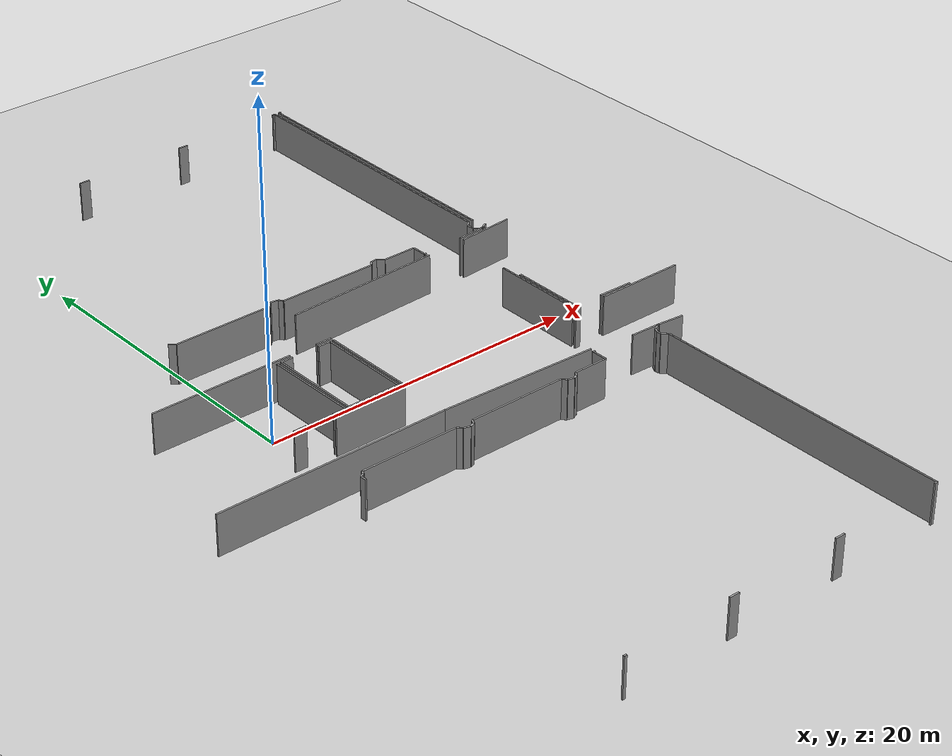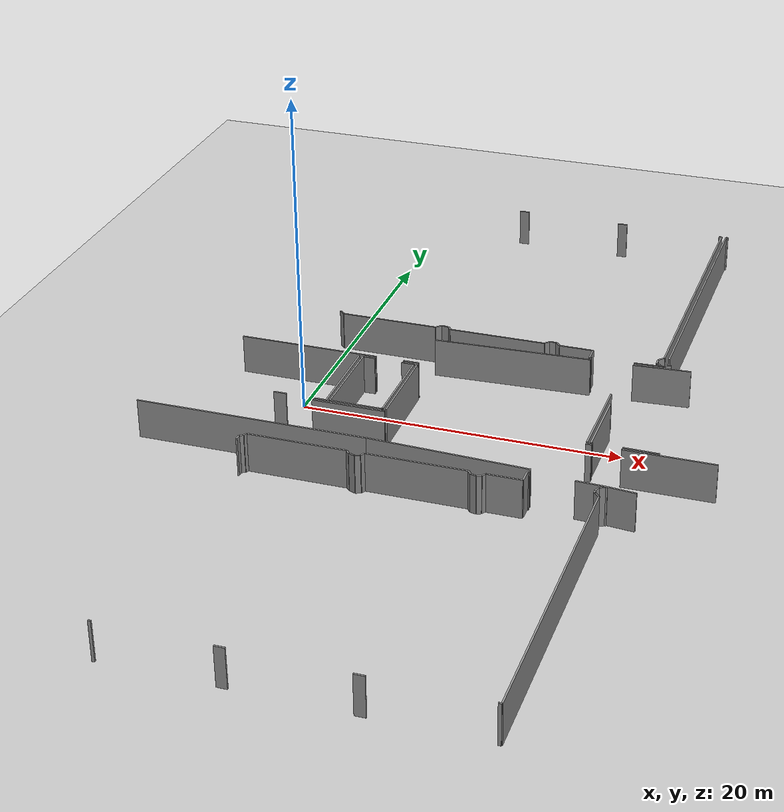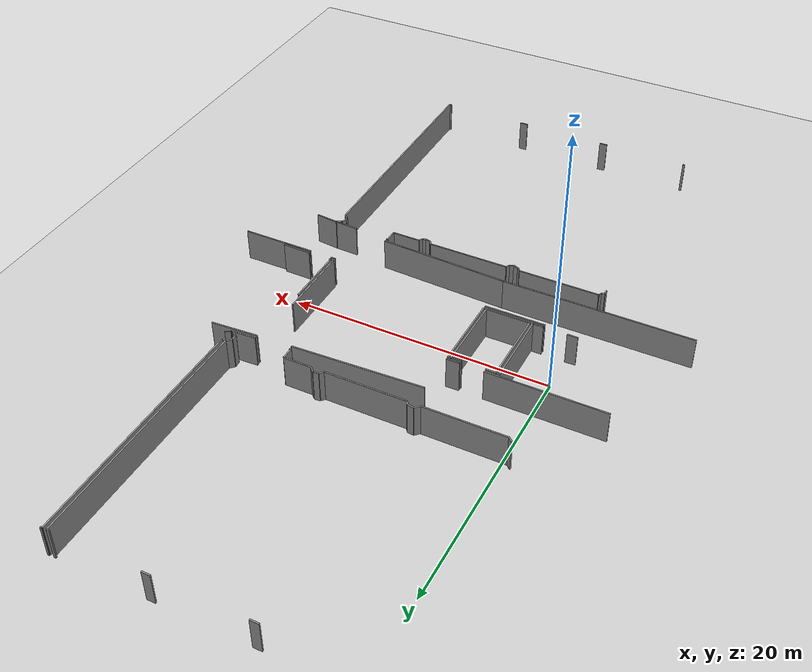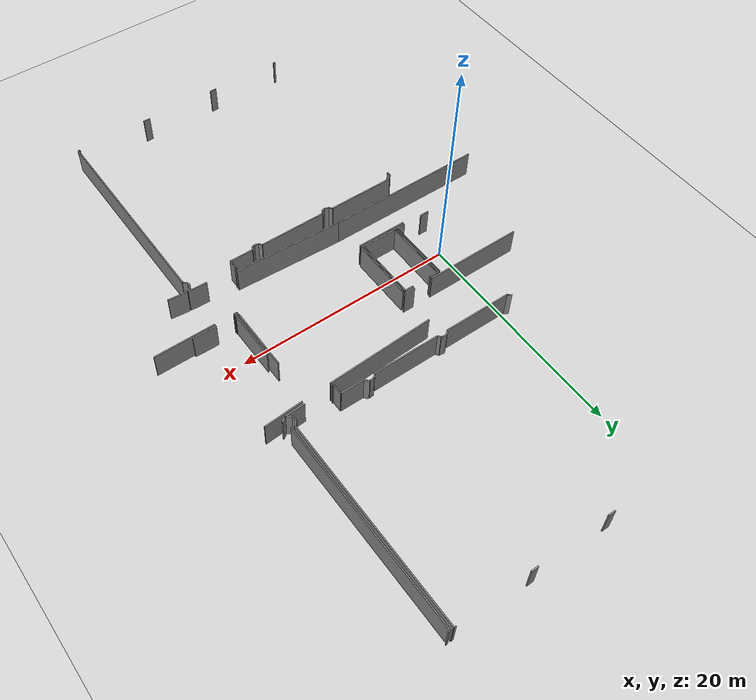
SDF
<sdf version="1.6">
 <world name="default">
  <model name="ground_plane">
   <static>1</static>
   <link name="link">
    <collision name="collision">
     <geometry><plane><normal>0 0 1</normal><size>100 100</size></plane></geometry>
     <surface><friction><ode><mu>100</mu><mu2>50</mu2></ode></friction></surface>
    </collision>
    <visual name="visual">
     <cast_shadows>0</cast_shadows>
     <geometry><plane><normal>0 0 1</normal><size>100 100</size></plane></geometry>
     <material>
      <script><uri>file://media/materials/scripts/gazebo.material</uri><name>Gazebo/Grey</name></script>
     </material>
    </visual>
   </link>
  </model>
  <model name="50041170">
   <static>1</static>
   <link name="Wall_81">
    <collision name="Wall_81_Collision">
     <geometry><box><size>9.92824075415 0.1 2.5</size></box></geometry>
     <pose>4.96412037707 0 1.25 0 0 0</pose>
    </collision>
    <visual name="Wall_81_Visual">
     <pose>4.96412037707 0 1.25 0 0 0</pose>
     <geometry><box><size>9.92824075415 0.1 2.5</size></box></geometry>
     <material>
      <script><uri>file://media/materials/scripts/gazebo.material</uri><name>Gazebo/Grey</name></script>
      <ambient>1 1 1 1</ambient>
     </material>
    </visual>
    <pose>72.8452921202 -20.6657992447 0 0 0 0.0432676211153</pose>
   </link>
   <link name="Wall_82">
    <collision name="Wall_82_Collision">
     <geometry><box><size>3.57288485013 0.1 2.5</size></box></geometry>
     <pose>1.78644242507 0 1.25 0 0 0</pose>
    </collision>
    <visual name="Wall_82_Visual">
     <pose>1.78644242507 0 1.25 0 0 0</pose>
     <geometry><box><size>3.57288485013 0.1 2.5</size></box></geometry>
     <material>
      <script><uri>file://media/materials/scripts/gazebo.material</uri><name>Gazebo/Grey</name></script>
      <ambient>1 1 1 1</ambient>
     </material>
    </visual>
    <pose>85.4134746596 -20.1150074577 0 0 0 0.064920921268</pose>
   </link>
   <link name="Wall_94">
    <collision name="Wall_94_Collision">
     <geometry><box><size>1.00168195233 0.1 2.5</size></box></geometry>
     <pose>0.500840976167 0 1.25 0 0 0</pose>
    </collision>
    <visual name="Wall_94_Visual">
     <pose>0.500840976167 0 1.25 0 0 0</pose>
     <geometry><box><size>1.00168195233 0.1 2.5</size></box></geometry>
     <material>
      <script><uri>file://media/materials/scripts/gazebo.material</uri><name>Gazebo/Grey</name></script>
      <ambient>1 1 1 1</ambient>
     </material>
    </visual>
    <pose>72.8352638761 -23.855542509 0 0 0 3.14159265359</pose>
   </link>
   <link name="Wall_95">
    <collision name="Wall_95_Collision">
     <geometry><box><size>8.88819777221 0.1 2.5</size></box></geometry>
     <pose>4.4440988861 0 1.25 0 0 0</pose>
    </collision>
    <visual name="Wall_95_Visual">
     <pose>4.4440988861 0 1.25 0 0 0</pose>
     <geometry><box><size>8.88819777221 0.1 2.5</size></box></geometry>
     <material>
      <script><uri>file://media/materials/scripts/gazebo.material</uri><name>Gazebo/Grey</name></script>
      <ambient>1 1 1 1</ambient>
     </material>
    </visual>
    <pose>70.0587096569 -23.855542509 0 0 0 3.14159265359</pose>
   </link>
   <link name="Wall_134">
    <collision name="Wall_134_Collision">
     <geometry><box><size>1.77138421845 0.1 2.5</size></box></geometry>
     <pose>0.885692109227 0 1.25 0 0 0</pose>
    </collision>
    <visual name="Wall_134_Visual">
     <pose>0.885692109227 0 1.25 0 0 0</pose>
     <geometry><box><size>1.77138421845 0.1 2.5</size></box></geometry>
     <material>
      <script><uri>file://media/materials/scripts/gazebo.material</uri><name>Gazebo/Grey</name></script>
      <ambient>1 1 1 1</ambient>
     </material>
    </visual>
    <pose>87.1745104884 -19.7574180445 0 0 0 -3.09442198889</pose>
   </link>
   <link name="Wall_135">
    <collision name="Wall_135_Collision">
     <geometry><box><size>0.125162641617 0.1 2.5</size></box></geometry>
     <pose>0.0625813208086 0 1.25 0 0 0</pose>
    </collision>
    <visual name="Wall_135_Visual">
     <pose>0.0625813208086 0 1.25 0 0 0</pose>
     <geometry><box><size>0.125162641617 0.1 2.5</size></box></geometry>
     <material>
      <script><uri>file://media/materials/scripts/gazebo.material</uri><name>Gazebo/Grey</name></script>
      <ambient>1 1 1 1</ambient>
     </material>
    </visual>
    <pose>82.7591634667 -19.9661070737 0 0 0 3.14159265359</pose>
   </link>
   <link name="Wall_136">
    <collision name="Wall_136_Collision">
     <geometry><box><size>0.94319991497 0.1 2.5</size></box></geometry>
     <pose>0.471599957485 0 1.25 0 0 0</pose>
    </collision>
    <visual name="Wall_136_Visual">
     <pose>0.471599957485 0 1.25 0 0 0</pose>
     <geometry><box><size>0.94319991497 0.1 2.5</size></box></geometry>
     <material>
      <script><uri>file://media/materials/scripts/gazebo.material</uri><name>Gazebo/Grey</name></script>
      <ambient>1 1 1 1</ambient>
     </material>
    </visual>
    <pose>82.6340008251 -19.9661070737 0 0 0 1.5796790003</pose>
   </link>
   <link name="Wall_137">
    <collision name="Wall_137_Collision">
     <geometry><box><size>2.13842785059 0.1 2.5</size></box></geometry>
     <pose>1.0692139253 0 1.25 0 0 0</pose>
    </collision>
    <visual name="Wall_137_Visual">
     <pose>1.0692139253 0 1.25 0 0 0</pose>
     <geometry><box><size>2.13842785059 0.1 2.5</size></box></geometry>
     <material>
      <script><uri>file://media/materials/scripts/gazebo.material</uri><name>Gazebo/Grey</name></script>
      <ambient>1 1 1 1</ambient>
     </material>
    </visual>
    <pose>82.6256227984 -19.0229443686 0 0 0 3.14159265359</pose>
   </link>
   <link name="Wall_138">
    <collision name="Wall_138_Collision">
     <geometry><box><size>0.473665938493 0.1 2.5</size></box></geometry>
     <pose>0.236832969247 0 1.25 0 0 0</pose>
    </collision>
    <visual name="Wall_138_Visual">
     <pose>0.236832969247 0 1.25 0 0 0</pose>
     <geometry><box><size>0.473665938493 0.1 2.5</size></box></geometry>
     <material>
      <script><uri>file://media/materials/scripts/gazebo.material</uri><name>Gazebo/Grey</name></script>
      <ambient>1 1 1 1</ambient>
     </material>
    </visual>
    <pose>80.4871949478 -19.0229443686 0 0 0 2.35297297395</pose>
   </link>
   <link name="Wall_139">
    <collision name="Wall_139_Collision">
     <geometry><box><size>0.423304508491 0.1 2.5</size></box></geometry>
     <pose>0.211652254246 0 1.25 0 0 0</pose>
    </collision>
    <visual name="Wall_139_Visual">
     <pose>0.211652254246 0 1.25 0 0 0</pose>
     <geometry><box><size>0.423304508491 0.1 2.5</size></box></geometry>
     <material>
      <script><uri>file://media/materials/scripts/gazebo.material</uri><name>Gazebo/Grey</name></script>
      <ambient>1 1 1 1</ambient>
     </material>
    </visual>
    <pose>80.153343277 -18.6869347212 0 0 0 -3.03855218802</pose>
   </link>
   <link name="Wall_140">
    <collision name="Wall_140_Collision">
     <geometry><box><size>0.381020437133 0.1 2.5</size></box></geometry>
     <pose>0.190510218566 0 1.25 0 0 0</pose>
    </collision>
    <visual name="Wall_140_Visual">
     <pose>0.190510218566 0 1.25 0 0 0</pose>
     <geometry><box><size>0.381020437133 0.1 2.5</size></box></geometry>
     <material>
      <script><uri>file://media/materials/scripts/gazebo.material</uri><name>Gazebo/Grey</name></script>
      <ambient>1 1 1 1</ambient>
     </material>
    </visual>
    <pose>79.7322839643 -18.7304750722 0 0 0 -2.27530308333</pose>
   </link>
   <link name="Wall_141">
    <collision name="Wall_141_Collision">
     <geometry><box><size>6.18285678017 0.1 2.5</size></box></geometry>
     <pose>3.09142839009 0 1.25 0 0 0</pose>
    </collision>
    <visual name="Wall_141_Visual">
     <pose>3.09142839009 0 1.25 0 0 0</pose>
     <geometry><box><size>6.18285678017 0.1 2.5</size></box></geometry>
     <material>
      <script><uri>file://media/materials/scripts/gazebo.material</uri><name>Gazebo/Grey</name></script>
      <ambient>1 1 1 1</ambient>
     </material>
    </visual>
    <pose>79.4855129955 -19.0207863921 0 0 0 3.14159265359</pose>
   </link>
   <link name="Wall_142">
    <collision name="Wall_142_Collision">
     <geometry><box><size>0.314224030328 0.1 2.5</size></box></geometry>
     <pose>0.157112015164 0 1.25 0 0 0</pose>
    </collision>
    <visual name="Wall_142_Visual">
     <pose>0.157112015164 0 1.25 0 0 0</pose>
     <geometry><box><size>0.314224030328 0.1 2.5</size></box></geometry>
     <material>
      <script><uri>file://media/materials/scripts/gazebo.material</uri><name>Gazebo/Grey</name></script>
      <ambient>1 1 1 1</ambient>
     </material>
    </visual>
    <pose>73.3026562153 -19.0207863921 0 0 0 2.16361682024</pose>
   </link>
   <link name="Wall_143">
    <collision name="Wall_143_Collision">
     <geometry><box><size>0.499048203514 0.1 2.5</size></box></geometry>
     <pose>0.249524101757 0 1.25 0 0 0</pose>
    </collision>
    <visual name="Wall_143_Visual">
     <pose>0.249524101757 0 1.25 0 0 0</pose>
     <geometry><box><size>0.499048203514 0.1 2.5</size></box></geometry>
     <material>
      <script><uri>file://media/materials/scripts/gazebo.material</uri><name>Gazebo/Grey</name></script>
      <ambient>1 1 1 1</ambient>
     </material>
    </visual>
    <pose>73.1270984735 -18.7601789851 0 0 0 2.99814878199</pose>
   </link>
   <link name="Wall_144">
    <collision name="Wall_144_Collision">
     <geometry><box><size>0.45402322018 0.1 2.5</size></box></geometry>
     <pose>0.22701161009 0 1.25 0 0 0</pose>
    </collision>
    <visual name="Wall_144_Visual">
     <pose>0.22701161009 0 1.25 0 0 0</pose>
     <geometry><box><size>0.45402322018 0.1 2.5</size></box></geometry>
     <material>
      <script><uri>file://media/materials/scripts/gazebo.material</uri><name>Gazebo/Grey</name></script>
      <ambient>1 1 1 1</ambient>
     </material>
    </visual>
    <pose>72.6331757164 -18.6888388182 0 0 0 -2.34749561906</pose>
   </link>
   <link name="Wall_145">
    <collision name="Wall_145_Collision">
     <geometry><box><size>6.21243375329 0.1 2.5</size></box></geometry>
     <pose>3.10621687665 0 1.25 0 0 0</pose>
    </collision>
    <visual name="Wall_145_Visual">
     <pose>3.10621687665 0 1.25 0 0 0</pose>
     <geometry><box><size>6.21243375329 0.1 2.5</size></box></geometry>
     <material>
      <script><uri>file://media/materials/scripts/gazebo.material</uri><name>Gazebo/Grey</name></script>
      <ambient>1 1 1 1</ambient>
     </material>
    </visual>
    <pose>72.3149376408 -19.0126622449 0 0 0 3.14159265359</pose>
   </link>
   <link name="Wall_146">
    <collision name="Wall_146_Collision">
     <geometry><box><size>0.431104638687 0.1 2.5</size></box></geometry>
     <pose>0.215552319343 0 1.25 0 0 0</pose>
    </collision>
    <visual name="Wall_146_Visual">
     <pose>0.215552319343 0 1.25 0 0 0</pose>
     <geometry><box><size>0.431104638687 0.1 2.5</size></box></geometry>
     <material>
      <script><uri>file://media/materials/scripts/gazebo.material</uri><name>Gazebo/Grey</name></script>
      <ambient>1 1 1 1</ambient>
     </material>
    </visual>
    <pose>66.1025038875 -19.0126622449 0 0 0 2.40118287194</pose>
   </link>
   <link name="Wall_150">
    <collision name="Wall_150_Collision">
     <geometry><box><size>0.658563676177 0.1 2.5</size></box></geometry>
     <pose>0.329281838088 0 1.25 0 0 0</pose>
    </collision>
    <visual name="Wall_150_Visual">
     <pose>0.329281838088 0 1.25 0 0 0</pose>
     <geometry><box><size>0.658563676177 0.1 2.5</size></box></geometry>
     <material>
      <script><uri>file://media/materials/scripts/gazebo.material</uri><name>Gazebo/Grey</name></script>
      <ambient>1 1 1 1</ambient>
     </material>
    </visual>
    <pose>72.4739932087 -0.0180254514297 0 0 0 0.0</pose>
   </link>
   <link name="Wall_151">
    <collision name="Wall_151_Collision">
     <geometry><box><size>0.637491669576 0.1 2.5</size></box></geometry>
     <pose>0.318745834788 0 1.25 0 0 0</pose>
    </collision>
    <visual name="Wall_151_Visual">
     <pose>0.318745834788 0 1.25 0 0 0</pose>
     <geometry><box><size>0.637491669576 0.1 2.5</size></box></geometry>
     <material>
      <script><uri>file://media/materials/scripts/gazebo.material</uri><name>Gazebo/Grey</name></script>
      <ambient>1 1 1 1</ambient>
     </material>
    </visual>
    <pose>79.6802386468 -0.0180254514297 0 0 0 0.0</pose>
   </link>
   <link name="Wall_152">
    <collision name="Wall_152_Collision">
     <geometry><box><size>0.182920250071 0.1 2.5</size></box></geometry>
     <pose>0.0914601250357 0 1.25 0 0 0</pose>
    </collision>
    <visual name="Wall_152_Visual">
     <pose>0.0914601250357 0 1.25 0 0 0</pose>
     <geometry><box><size>0.182920250071 0.1 2.5</size></box></geometry>
     <material>
      <script><uri>file://media/materials/scripts/gazebo.material</uri><name>Gazebo/Grey</name></script>
      <ambient>1 1 1 1</ambient>
     </material>
    </visual>
    <pose>86.8687125131 -0.0180254514297 0 0 0 0.0</pose>
   </link>
   <link name="Wall_153">
    <collision name="Wall_153_Collision">
     <geometry><box><size>18.6677668116 0.1 2.5</size></box></geometry>
     <pose>9.33388340579 0 1.25 0 0 0</pose>
    </collision>
    <visual name="Wall_153_Visual">
     <pose>9.33388340579 0 1.25 0 0 0</pose>
     <geometry><box><size>18.6677668116 0.1 2.5</size></box></geometry>
     <material>
      <script><uri>file://media/materials/scripts/gazebo.material</uri><name>Gazebo/Grey</name></script>
      <ambient>1 1 1 1</ambient>
     </material>
    </visual>
    <pose>87.0516327632 -0.0180254514297 0 0 0 -1.57079632679</pose>
   </link>
   <link name="Wall_154">
    <collision name="Wall_154_Collision">
     <geometry><box><size>0.447329979428 0.1 2.5</size></box></geometry>
     <pose>0.223664989714 0 1.25 0 0 0</pose>
    </collision>
    <visual name="Wall_154_Visual">
     <pose>0.223664989714 0 1.25 0 0 0</pose>
     <geometry><box><size>0.447329979428 0.1 2.5</size></box></geometry>
     <material>
      <script><uri>file://media/materials/scripts/gazebo.material</uri><name>Gazebo/Grey</name></script>
      <ambient>1 1 1 1</ambient>
     </material>
    </visual>
    <pose>87.0516327632 -18.685792263 0 0 0 -2.39432860486</pose>
   </link>
   <link name="Wall_155">
    <collision name="Wall_155_Collision">
     <geometry><box><size>0.474867603504 0.1 2.5</size></box></geometry>
     <pose>0.237433801752 0 1.25 0 0 0</pose>
    </collision>
    <visual name="Wall_155_Visual">
     <pose>0.237433801752 0 1.25 0 0 0</pose>
     <geometry><box><size>0.474867603504 0.1 2.5</size></box></geometry>
     <material>
      <script><uri>file://media/materials/scripts/gazebo.material</uri><name>Gazebo/Grey</name></script>
      <ambient>1 1 1 1</ambient>
     </material>
    </visual>
    <pose>86.7234933833 -18.9898130811 0 0 0 -1.49105160984</pose>
   </link>
   <link name="Wall_156">
    <collision name="Wall_156_Collision">
     <geometry><box><size>0.507253548489 0.1 2.5</size></box></geometry>
     <pose>0.253626774244 0 1.25 0 0 0</pose>
    </collision>
    <visual name="Wall_156_Visual">
     <pose>0.253626774244 0 1.25 0 0 0</pose>
     <geometry><box><size>0.507253548489 0.1 2.5</size></box></geometry>
     <material>
      <script><uri>file://media/materials/scripts/gazebo.material</uri><name>Gazebo/Grey</name></script>
      <ambient>1 1 1 1</ambient>
     </material>
    </visual>
    <pose>86.7613214433 -19.4631715909 0 0 0 -0.618824032403</pose>
   </link>
   <link name="Wall_165">
    <collision name="Wall_165_Collision">
     <geometry><box><size>0.0771793976707 0.1 2.5</size></box></geometry>
     <pose>0.0385896988353 0 1.25 0 0 0</pose>
    </collision>
    <visual name="Wall_165_Visual">
     <pose>0.0385896988353 0 1.25 0 0 0</pose>
     <geometry><box><size>0.0771793976707 0.1 2.5</size></box></geometry>
     <material>
      <script><uri>file://media/materials/scripts/gazebo.material</uri><name>Gazebo/Grey</name></script>
      <ambient>1 1 1 1</ambient>
     </material>
    </visual>
    <pose>87.2898987655 -19.7506902352 0 0 0 1.57079632679</pose>
   </link>
   <link name="Wall_166">
    <collision name="Wall_166_Collision">
     <geometry><box><size>0.4204239429 0.1 2.5</size></box></geometry>
     <pose>0.21021197145 0 1.25 0 0 0</pose>
    </collision>
    <visual name="Wall_166_Visual">
     <pose>0.21021197145 0 1.25 0 0 0</pose>
     <geometry><box><size>0.4204239429 0.1 2.5</size></box></geometry>
     <material>
      <script><uri>file://media/materials/scripts/gazebo.material</uri><name>Gazebo/Grey</name></script>
      <ambient>1 1 1 1</ambient>
     </material>
    </visual>
    <pose>87.2898987655 -19.6735108375 0 0 0 0.522554085473</pose>
   </link>
   <link name="Wall_169">
    <collision name="Wall_169_Collision">
     <geometry><box><size>18.7020405573 0.1 2.5</size></box></geometry>
     <pose>9.35102027863 0 1.25 0 0 0</pose>
    </collision>
    <visual name="Wall_169_Visual">
     <pose>9.35102027863 0 1.25 0 0 0</pose>
     <geometry><box><size>18.7020405573 0.1 2.5</size></box></geometry>
     <material>
      <script><uri>file://media/materials/scripts/gazebo.material</uri><name>Gazebo/Grey</name></script>
      <ambient>1 1 1 1</ambient>
     </material>
    </visual>
    <pose>87.367205103 -18.7020405573 0 0 0 1.57079632679</pose>
   </link>
   <link name="Wall_170">
    <collision name="Wall_170_Collision">
     <geometry><box><size>0.149535082987 0.1 2.5</size></box></geometry>
     <pose>0.0747675414935 0 1.25 0 0 0</pose>
    </collision>
    <visual name="Wall_170_Visual">
     <pose>0.0747675414935 0 1.25 0 0 0</pose>
     <geometry><box><size>0.149535082987 0.1 2.5</size></box></geometry>
     <material>
      <script><uri>file://media/materials/scripts/gazebo.material</uri><name>Gazebo/Grey</name></script>
      <ambient>1 1 1 1</ambient>
     </material>
    </visual>
    <pose>87.367205103 -0.0 0 0 0 0.0</pose>
   </link>
   <link name="Wall_263">
    <collision name="Wall_263_Collision">
     <geometry><box><size>4.56894417822 0.1 2.5</size></box></geometry>
     <pose>2.28447208911 0 1.25 0 0 0</pose>
    </collision>
    <visual name="Wall_263_Visual">
     <pose>2.28447208911 0 1.25 0 0 0</pose>
     <geometry><box><size>4.56894417822 0.1 2.5</size></box></geometry>
     <material>
      <script><uri>file://media/materials/scripts/gazebo.material</uri><name>Gazebo/Grey</name></script>
      <ambient>1 1 1 1</ambient>
     </material>
    </visual>
    <pose>68.2446129923 -30.0785122656 0 0 0 0.0</pose>
   </link>
   <link name="Wall_264">
    <collision name="Wall_264_Collision">
     <geometry><box><size>0.350480784488 0.1 2.5</size></box></geometry>
     <pose>0.175240392244 0 1.25 0 0 0</pose>
    </collision>
    <visual name="Wall_264_Visual">
     <pose>0.175240392244 0 1.25 0 0 0</pose>
     <geometry><box><size>0.350480784488 0.1 2.5</size></box></geometry>
     <material>
      <script><uri>file://media/materials/scripts/gazebo.material</uri><name>Gazebo/Grey</name></script>
      <ambient>1 1 1 1</ambient>
     </material>
    </visual>
    <pose>84.9710894608 -30.0785122656 0 0 0 0.0</pose>
   </link>
   <link name="Wall_265">
    <collision name="Wall_265_Collision">
     <geometry><box><size>5.55374313732 0.1 2.5</size></box></geometry>
     <pose>2.77687156866 0 1.25 0 0 0</pose>
    </collision>
    <visual name="Wall_265_Visual">
     <pose>2.77687156866 0 1.25 0 0 0</pose>
     <geometry><box><size>5.55374313732 0.1 2.5</size></box></geometry>
     <material>
      <script><uri>file://media/materials/scripts/gazebo.material</uri><name>Gazebo/Grey</name></script>
      <ambient>1 1 1 1</ambient>
     </material>
    </visual>
    <pose>87.064326743 -30.0785122656 0 0 0 0.0</pose>
   </link>
   <link name="Wall_276">
    <collision name="Wall_276_Collision">
     <geometry><box><size>9.93431141562 0.1 2.5</size></box></geometry>
     <pose>4.96715570781 0 1.25 0 0 0</pose>
    </collision>
    <visual name="Wall_276_Visual">
     <pose>4.96715570781 0 1.25 0 0 0</pose>
     <geometry><box><size>9.93431141562 0.1 2.5</size></box></geometry>
     <material>
      <script><uri>file://media/materials/scripts/gazebo.material</uri><name>Gazebo/Grey</name></script>
      <ambient>1 1 1 1</ambient>
     </material>
    </visual>
    <pose>82.7479927644 -33.697819809 0 0 0 3.09809569011</pose>
   </link>
   <link name="Wall_277">
    <collision name="Wall_277_Collision">
     <geometry><box><size>14.4254394199 0.1 2.5</size></box></geometry>
     <pose>7.21271970993 0 1.25 0 0 0</pose>
    </collision>
    <visual name="Wall_277_Visual">
     <pose>7.21271970993 0 1.25 0 0 0</pose>
     <geometry><box><size>14.4254394199 0.1 2.5</size></box></geometry>
     <material>
      <script><uri>file://media/materials/scripts/gazebo.material</uri><name>Gazebo/Grey</name></script>
      <ambient>1 1 1 1</ambient>
     </material>
    </visual>
    <pose>72.8230776554 -33.2658436736 0 0 0 3.14128466346</pose>
   </link>
   <link name="Wall_293">
    <collision name="Wall_293_Collision">
     <geometry><box><size>0.109154425083 0.1 2.5</size></box></geometry>
     <pose>0.0545772125414 0 1.25 0 0 0</pose>
    </collision>
    <visual name="Wall_293_Visual">
     <pose>0.0545772125414 0 1.25 0 0 0</pose>
     <geometry><box><size>0.109154425083 0.1 2.5</size></box></geometry>
     <material>
      <script><uri>file://media/materials/scripts/gazebo.material</uri><name>Gazebo/Grey</name></script>
      <ambient>1 1 1 1</ambient>
     </material>
    </visual>
    <pose>87.2223667925 -34.2840277998 0 0 0 1.63713241817</pose>
   </link>
   <link name="Wall_294">
    <collision name="Wall_294_Collision">
     <geometry><box><size>1.73193680549 0.1 2.5</size></box></geometry>
     <pose>0.865968402747 0 1.25 0 0 0</pose>
    </collision>
    <visual name="Wall_294_Visual">
     <pose>0.865968402747 0 1.25 0 0 0</pose>
     <geometry><box><size>1.73193680549 0.1 2.5</size></box></geometry>
     <material>
      <script><uri>file://media/materials/scripts/gazebo.material</uri><name>Gazebo/Grey</name></script>
      <ambient>1 1 1 1</ambient>
     </material>
    </visual>
    <pose>87.215131224 -34.1751134524 0 0 0 -0.0982246417677</pose>
   </link>
   <link name="Wall_304">
    <collision name="Wall_304_Collision">
     <geometry><box><size>0.183681888864 0.1 2.5</size></box></geometry>
     <pose>0.0918409444321 0 1.25 0 0 0</pose>
    </collision>
    <visual name="Wall_304_Visual">
     <pose>0.0918409444321 0 1.25 0 0 0</pose>
     <geometry><box><size>0.183681888864 0.1 2.5</size></box></geometry>
     <material>
      <script><uri>file://media/materials/scripts/gazebo.material</uri><name>Gazebo/Grey</name></script>
      <ambient>1 1 1 1</ambient>
     </material>
    </visual>
    <pose>87.0743549871 -53.9197105773 0 0 0 3.14159265359</pose>
   </link>
   <link name="Wall_305">
    <collision name="Wall_305_Collision">
     <geometry><box><size>0.634318174606 0.1 2.5</size></box></geometry>
     <pose>0.317159087303 0 1.25 0 0 0</pose>
    </collision>
    <visual name="Wall_305_Visual">
     <pose>0.317159087303 0 1.25 0 0 0</pose>
     <geometry><box><size>0.634318174606 0.1 2.5</size></box></geometry>
     <material>
      <script><uri>file://media/materials/scripts/gazebo.material</uri><name>Gazebo/Grey</name></script>
      <ambient>1 1 1 1</ambient>
     </material>
    </visual>
    <pose>80.3386753832 -53.9197105773 0 0 0 3.14159265359</pose>
   </link>
   <link name="Wall_306">
    <collision name="Wall_306_Collision">
     <geometry><box><size>0.618450699756 0.1 2.5</size></box></geometry>
     <pose>0.309225349878 0 1.25 0 0 0</pose>
    </collision>
    <visual name="Wall_306_Visual">
     <pose>0.309225349878 0 1.25 0 0 0</pose>
     <geometry><box><size>0.618450699756 0.1 2.5</size></box></geometry>
     <material>
      <script><uri>file://media/materials/scripts/gazebo.material</uri><name>Gazebo/Grey</name></script>
      <ambient>1 1 1 1</ambient>
     </material>
    </visual>
    <pose>73.1356034401 -53.9197105773 0 0 0 3.14159265359</pose>
   </link>
   <link name="Wall_307">
    <collision name="Wall_307_Collision">
     <geometry><box><size>0.175557741741 0.1 2.5</size></box></geometry>
     <pose>0.0877788708705 0 1.25 0 0 0</pose>
    </collision>
    <visual name="Wall_307_Visual">
     <pose>0.0877788708705 0 1.25 0 0 0</pose>
     <geometry><box><size>0.175557741741 0.1 2.5</size></box></geometry>
     <material>
      <script><uri>file://media/materials/scripts/gazebo.material</uri><name>Gazebo/Grey</name></script>
      <ambient>1 1 1 1</ambient>
     </material>
    </visual>
    <pose>65.9598235537 -53.9197105773 0 0 0 3.14159265359</pose>
   </link>
   <link name="Wall_309">
    <collision name="Wall_309_Collision">
     <geometry><box><size>0.36723683793 0.1 2.5</size></box></geometry>
     <pose>0.183618418965 0 1.25 0 0 0</pose>
    </collision>
    <visual name="Wall_309_Visual">
     <pose>0.183618418965 0 1.25 0 0 0</pose>
     <geometry><box><size>0.36723683793 0.1 2.5</size></box></geometry>
     <material>
      <script><uri>file://media/materials/scripts/gazebo.material</uri><name>Gazebo/Grey</name></script>
      <ambient>1 1 1 1</ambient>
     </material>
    </visual>
    <pose>65.7842658119 -35.5991241154 0 0 0 1.57079632679</pose>
   </link>
   <link name="Wall_310">
    <collision name="Wall_310_Collision">
     <geometry><box><size>0.252267484832 0.1 2.5</size></box></geometry>
     <pose>0.126133742416 0 1.25 0 0 0</pose>
    </collision>
    <visual name="Wall_310_Visual">
     <pose>0.126133742416 0 1.25 0 0 0</pose>
     <geometry><box><size>0.252267484832 0.1 2.5</size></box></geometry>
     <material>
      <script><uri>file://media/materials/scripts/gazebo.material</uri><name>Gazebo/Grey</name></script>
      <ambient>1 1 1 1</ambient>
     </material>
    </visual>
    <pose>65.7842658119 -35.2318872775 0 0 0 0.48187651467</pose>
   </link>
   <link name="Wall_311">
    <collision name="Wall_311_Collision">
     <geometry><box><size>0.235112041039 0.1 2.5</size></box></geometry>
     <pose>0.11755602052 0 1.25 0 0 0</pose>
    </collision>
    <visual name="Wall_311_Visual">
     <pose>0.11755602052 0 1.25 0 0 0</pose>
     <geometry><box><size>0.235112041039 0.1 2.5</size></box></geometry>
     <material>
      <script><uri>file://media/materials/scripts/gazebo.material</uri><name>Gazebo/Grey</name></script>
      <ambient>1 1 1 1</ambient>
     </material>
    </visual>
    <pose>66.0078067976 -35.1149757228 0 0 0 1.09097046267</pose>
   </link>
   <link name="Wall_312">
    <collision name="Wall_312_Collision">
     <geometry><box><size>6.12586081051 0.1 2.5</size></box></geometry>
     <pose>3.06293040526 0 1.25 0 0 0</pose>
    </collision>
    <visual name="Wall_312_Visual">
     <pose>3.06293040526 0 1.25 0 0 0</pose>
     <geometry><box><size>6.12586081051 0.1 2.5</size></box></geometry>
     <material>
      <script><uri>file://media/materials/scripts/gazebo.material</uri><name>Gazebo/Grey</name></script>
      <ambient>1 1 1 1</ambient>
     </material>
    </visual>
    <pose>66.1163403256 -34.9064136333 0 0 0 0.0</pose>
   </link>
   <link name="Wall_313">
    <collision name="Wall_313_Collision">
     <geometry><box><size>0.345186006347 0.1 2.5</size></box></geometry>
     <pose>0.172593003174 0 1.25 0 0 0</pose>
    </collision>
    <visual name="Wall_313_Visual">
     <pose>0.172593003174 0 1.25 0 0 0</pose>
     <geometry><box><size>0.345186006347 0.1 2.5</size></box></geometry>
     <material>
      <script><uri>file://media/materials/scripts/gazebo.material</uri><name>Gazebo/Grey</name></script>
      <ambient>1 1 1 1</ambient>
     </material>
    </visual>
    <pose>72.2422011361 -34.9064136333 0 0 0 -0.803861604719</pose>
   </link>
   <link name="Wall_314">
    <collision name="Wall_314_Collision">
     <geometry><box><size>0.408705880276 0.1 2.5</size></box></geometry>
     <pose>0.204352940138 0 1.25 0 0 0</pose>
    </collision>
    <visual name="Wall_314_Visual">
     <pose>0.204352940138 0 1.25 0 0 0</pose>
     <geometry><box><size>0.408705880276 0.1 2.5</size></box></geometry>
     <material>
      <script><uri>file://media/materials/scripts/gazebo.material</uri><name>Gazebo/Grey</name></script>
      <ambient>1 1 1 1</ambient>
     </material>
    </visual>
    <pose>72.4817365364 -35.1549617594 0 0 0 -0.344047673976</pose>
   </link>
   <link name="Wall_315">
    <collision name="Wall_315_Collision">
     <geometry><box><size>0.326164297571 0.1 2.5</size></box></geometry>
     <pose>0.163082148786 0 1.25 0 0 0</pose>
    </collision>
    <visual name="Wall_315_Visual">
     <pose>0.163082148786 0 1.25 0 0 0</pose>
     <geometry><box><size>0.326164297571 0.1 2.5</size></box></geometry>
     <material>
      <script><uri>file://media/materials/scripts/gazebo.material</uri><name>Gazebo/Grey</name></script>
      <ambient>1 1 1 1</ambient>
     </material>
    </visual>
    <pose>72.8664910666 -35.2928183809 0 0 0 0.364100187523</pose>
   </link>
   <link name="Wall_316">
    <collision name="Wall_316_Collision">
     <geometry><box><size>0.311559843321 0.1 2.5</size></box></geometry>
     <pose>0.15577992166 0 1.25 0 0 0</pose>
    </collision>
    <visual name="Wall_316_Visual">
     <pose>0.15577992166 0 1.25 0 0 0</pose>
     <geometry><box><size>0.311559843321 0.1 2.5</size></box></geometry>
     <material>
      <script><uri>file://media/materials/scripts/gazebo.material</uri><name>Gazebo/Grey</name></script>
      <ambient>1 1 1 1</ambient>
     </material>
    </visual>
    <pose>73.1712735235 -35.176668465 0 0 0 1.08637532591</pose>
   </link>
   <link name="Wall_317">
    <collision name="Wall_317_Collision">
     <geometry><box><size>6.16610072673 0.1 2.5</size></box></geometry>
     <pose>3.08305036337 0 1.25 0 0 0</pose>
    </collision>
    <visual name="Wall_317_Visual">
     <pose>3.08305036337 0 1.25 0 0 0</pose>
     <geometry><box><size>6.16610072673 0.1 2.5</size></box></geometry>
     <material>
      <script><uri>file://media/materials/scripts/gazebo.material</uri><name>Gazebo/Grey</name></script>
      <ambient>1 1 1 1</ambient>
     </material>
    </visual>
    <pose>73.3163657136 -34.900955222 0 0 0 0.0</pose>
   </link>
   <link name="Wall_318">
    <collision name="Wall_318_Collision">
     <geometry><box><size>0.342493951441 0.1 2.5</size></box></geometry>
     <pose>0.171246975721 0 1.25 0 0 0</pose>
    </collision>
    <visual name="Wall_318_Visual">
     <pose>0.171246975721 0 1.25 0 0 0</pose>
     <geometry><box><size>0.342493951441 0.1 2.5</size></box></geometry>
     <material>
      <script><uri>file://media/materials/scripts/gazebo.material</uri><name>Gazebo/Grey</name></script>
      <ambient>1 1 1 1</ambient>
     </material>
    </visual>
    <pose>79.4824664403 -34.900955222 0 0 0 -0.935078604188</pose>
   </link>
   <link name="Wall_319">
    <collision name="Wall_319_Collision">
     <geometry><box><size>0.382476712743 0.1 2.5</size></box></geometry>
     <pose>0.191238356371 0 1.25 0 0 0</pose>
    </collision>
    <visual name="Wall_319_Visual">
     <pose>0.191238356371 0 1.25 0 0 0</pose>
     <geometry><box><size>0.382476712743 0.1 2.5</size></box></geometry>
     <material>
      <script><uri>file://media/materials/scripts/gazebo.material</uri><name>Gazebo/Grey</name></script>
      <ambient>1 1 1 1</ambient>
     </material>
    </visual>
    <pose>79.685823998 -35.1765415252 0 0 0 -0.263574055902</pose>
   </link>
   <link name="Wall_320">
    <collision name="Wall_320_Collision">
     <geometry><box><size>0.290526488278 0.1 2.5</size></box></geometry>
     <pose>0.145263244139 0 1.25 0 0 0</pose>
    </collision>
    <visual name="Wall_320_Visual">
     <pose>0.145263244139 0 1.25 0 0 0</pose>
     <geometry><box><size>0.290526488278 0.1 2.5</size></box></geometry>
     <material>
      <script><uri>file://media/materials/scripts/gazebo.material</uri><name>Gazebo/Grey</name></script>
      <ambient>1 1 1 1</ambient>
     </material>
    </visual>
    <pose>80.0550918727 -35.2761892672 0 0 0 0.380506377112</pose>
   </link>
   <link name="Wall_321">
    <collision name="Wall_321_Collision">
     <geometry><box><size>0.3004389372 0.1 2.5</size></box></geometry>
     <pose>0.1502194686 0 1.25 0 0 0</pose>
    </collision>
    <visual name="Wall_321_Visual">
     <pose>0.1502194686 0 1.25 0 0 0</pose>
     <geometry><box><size>0.3004389372 0.1 2.5</size></box></geometry>
     <material>
      <script><uri>file://media/materials/scripts/gazebo.material</uri><name>Gazebo/Grey</name></script>
      <ambient>1 1 1 1</ambient>
     </material>
    </visual>
    <pose>80.3248389451 -35.1682904383 0 0 0 1.00189594706</pose>
   </link>
   <link name="Wall_322">
    <collision name="Wall_322_Collision">
     <geometry><box><size>2.15061407128 0.1 2.5</size></box></geometry>
     <pose>1.07530703564 0 1.25 0 0 0</pose>
    </collision>
    <visual name="Wall_322_Visual">
     <pose>1.07530703564 0 1.25 0 0 0</pose>
     <geometry><box><size>2.15061407128 0.1 2.5</size></box></geometry>
     <material>
      <script><uri>file://media/materials/scripts/gazebo.material</uri><name>Gazebo/Grey</name></script>
      <ambient>1 1 1 1</ambient>
     </material>
    </visual>
    <pose>80.4866871886 -34.9151724795 0 0 0 0.0</pose>
   </link>
   <link name="Wall_323">
    <collision name="Wall_323_Collision">
     <geometry><box><size>0.9524293104 0.1 2.5</size></box></geometry>
     <pose>0.4762146552 0 1.25 0 0 0</pose>
    </collision>
    <visual name="Wall_323_Visual">
     <pose>0.4762146552 0 1.25 0 0 0</pose>
     <geometry><box><size>0.9524293104 0.1 2.5</size></box></geometry>
     <material>
      <script><uri>file://media/materials/scripts/gazebo.material</uri><name>Gazebo/Grey</name></script>
      <ambient>1 1 1 1</ambient>
     </material>
    </visual>
    <pose>82.6373012599 -34.9151724795 0 0 0 1.57079632679</pose>
   </link>
   <link name="Wall_324">
    <collision name="Wall_324_Collision">
     <geometry><box><size>0.12005646468 0.1 2.5</size></box></geometry>
     <pose>0.0600282323402 0 1.25 0 0 0</pose>
    </collision>
    <visual name="Wall_324_Visual">
     <pose>0.0600282323402 0 1.25 0 0 0</pose>
     <geometry><box><size>0.12005646468 0.1 2.5</size></box></geometry>
     <material>
      <script><uri>file://media/materials/scripts/gazebo.material</uri><name>Gazebo/Grey</name></script>
      <ambient>1 1 1 1</ambient>
     </material>
    </visual>
    <pose>82.6373012599 -33.9627431691 0 0 0 -0.11976486285</pose>
   </link>
   <link name="Wall_325">
    <collision name="Wall_325_Collision">
     <geometry><box><size>1.75802720205 0.1 2.5</size></box></geometry>
     <pose>0.879013601023 0 1.25 0 0 0</pose>
    </collision>
    <visual name="Wall_325_Visual">
     <pose>0.879013601023 0 1.25 0 0 0</pose>
     <geometry><box><size>1.75802720205 0.1 2.5</size></box></geometry>
     <material>
      <script><uri>file://media/materials/scripts/gazebo.material</uri><name>Gazebo/Grey</name></script>
      <ambient>1 1 1 1</ambient>
     </material>
    </visual>
    <pose>85.4044619339 -34.1050426835 0 0 0 -0.0385674693039</pose>
   </link>
   <link name="Wall_326">
    <collision name="Wall_326_Collision">
     <geometry><box><size>0.0906350163435 0.1 2.5</size></box></geometry>
     <pose>0.0453175081717 0 1.25 0 0 0</pose>
    </collision>
    <visual name="Wall_326_Visual">
     <pose>0.0453175081717 0 1.25 0 0 0</pose>
     <geometry><box><size>0.0906350163435 0.1 2.5</size></box></geometry>
     <material>
      <script><uri>file://media/materials/scripts/gazebo.material</uri><name>Gazebo/Grey</name></script>
      <ambient>1 1 1 1</ambient>
     </material>
    </visual>
    <pose>87.1611818095 -34.1728285361 0 0 0 -1.57079632679</pose>
   </link>
   <link name="Wall_327">
    <collision name="Wall_327_Collision">
     <geometry><box><size>0.348297085921 0.1 2.5</size></box></geometry>
     <pose>0.17414854296 0 1.25 0 0 0</pose>
    </collision>
    <visual name="Wall_327_Visual">
     <pose>0.17414854296 0 1.25 0 0 0</pose>
     <geometry><box><size>0.348297085921 0.1 2.5</size></box></geometry>
     <material>
      <script><uri>file://media/materials/scripts/gazebo.material</uri><name>Gazebo/Grey</name></script>
      <ambient>1 1 1 1</ambient>
     </material>
    </visual>
    <pose>87.1611818095 -34.2634635524 0 0 0 -2.73306382362</pose>
   </link>
   <link name="Wall_328">
    <collision name="Wall_328_Collision">
     <geometry><box><size>0.347945137679 0.1 2.5</size></box></geometry>
     <pose>0.17397256884 0 1.25 0 0 0</pose>
    </collision>
    <visual name="Wall_328_Visual">
     <pose>0.17397256884 0 1.25 0 0 0</pose>
     <geometry><box><size>0.347945137679 0.1 2.5</size></box></geometry>
     <material>
      <script><uri>file://media/materials/scripts/gazebo.material</uri><name>Gazebo/Grey</name></script>
      <ambient>1 1 1 1</ambient>
     </material>
    </visual>
    <pose>86.8415473961 -34.4018279331 0 0 0 -2.04064388899</pose>
   </link>
   <link name="Wall_329">
    <collision name="Wall_329_Collision">
     <geometry><box><size>0.254486279661 0.1 2.5</size></box></geometry>
     <pose>0.12724313983 0 1.25 0 0 0</pose>
    </collision>
    <visual name="Wall_329_Visual">
     <pose>0.12724313983 0 1.25 0 0 0</pose>
     <geometry><box><size>0.254486279661 0.1 2.5</size></box></geometry>
     <material>
      <script><uri>file://media/materials/scripts/gazebo.material</uri><name>Gazebo/Grey</name></script>
      <ambient>1 1 1 1</ambient>
     </material>
    </visual>
    <pose>86.6840151058 -34.7120688014 0 0 0 -1.45782557003</pose>
   </link>
   <link name="Wall_330">
    <collision name="Wall_330_Collision">
     <geometry><box><size>0.429159035997 0.1 2.5</size></box></geometry>
     <pose>0.214579517999 0 1.25 0 0 0</pose>
    </collision>
    <visual name="Wall_330_Visual">
     <pose>0.214579517999 0 1.25 0 0 0</pose>
     <geometry><box><size>0.429159035997 0.1 2.5</size></box></geometry>
     <material>
      <script><uri>file://media/materials/scripts/gazebo.material</uri><name>Gazebo/Grey</name></script>
      <ambient>1 1 1 1</ambient>
     </material>
    </visual>
    <pose>86.7127035004 -34.9649328806 0 0 0 -0.730572558716</pose>
   </link>
   <link name="Wall_331">
    <collision name="Wall_331_Collision">
     <geometry><box><size>18.6684487946 0.1 2.5</size></box></geometry>
     <pose>9.33422439728 0 1.25 0 0 0</pose>
    </collision>
    <visual name="Wall_331_Visual">
     <pose>9.33422439728 0 1.25 0 0 0</pose>
     <geometry><box><size>18.6684487946 0.1 2.5</size></box></geometry>
     <material>
      <script><uri>file://media/materials/scripts/gazebo.material</uri><name>Gazebo/Grey</name></script>
      <ambient>1 1 1 1</ambient>
     </material>
    </visual>
    <pose>87.0323379137 -35.2513090667 0 0 0 -1.56854562512</pose>
   </link>
   <link name="Wall_413">
    <collision name="Wall_413_Collision">
     <geometry><box><size>0.797816635461 0.1 2.5</size></box></geometry>
     <pose>0.39890831773 0 1.25 0 0 0</pose>
    </collision>
    <visual name="Wall_413_Visual">
     <pose>0.39890831773 0 1.25 0 0 0</pose>
     <geometry><box><size>0.797816635461 0.1 2.5</size></box></geometry>
     <material>
      <script><uri>file://media/materials/scripts/gazebo.material</uri><name>Gazebo/Grey</name></script>
      <ambient>1 1 1 1</ambient>
     </material>
    </visual>
    <pose>69.0701025039 -29.8583986544 0 0 0 3.14159265359</pose>
   </link>
   <link name="Wall_414">
    <collision name="Wall_414_Collision">
     <geometry><box><size>0.794770080289 0.1 2.5</size></box></geometry>
     <pose>0.397385040145 0 1.25 0 0 0</pose>
    </collision>
    <visual name="Wall_414_Visual">
     <pose>0.397385040145 0 1.25 0 0 0</pose>
     <geometry><box><size>0.794770080289 0.1 2.5</size></box></geometry>
     <material>
      <script><uri>file://media/materials/scripts/gazebo.material</uri><name>Gazebo/Grey</name></script>
      <ambient>1 1 1 1</ambient>
     </material>
    </visual>
    <pose>66.5159468122 -29.8583986544 0 0 0 3.14159265359</pose>
   </link>
   <link name="Wall_417">
    <collision name="Wall_417_Collision">
     <geometry><box><size>5.76932046529 0.1 2.5</size></box></geometry>
     <pose>2.88466023265 0 1.25 0 0 0</pose>
    </collision>
    <visual name="Wall_417_Visual">
     <pose>2.88466023265 0 1.25 0 0 0</pose>
     <geometry><box><size>5.76932046529 0.1 2.5</size></box></geometry>
     <material>
      <script><uri>file://media/materials/scripts/gazebo.material</uri><name>Gazebo/Grey</name></script>
      <ambient>1 1 1 1</ambient>
     </material>
    </visual>
    <pose>69.0270699121 -24.0892386786 0 0 0 -1.56333739102</pose>
   </link>
   <link name="Wall_418">
    <collision name="Wall_418_Collision">
     <geometry><box><size>3.30233886579 0.1 2.5</size></box></geometry>
     <pose>1.6511694329 0 1.25 0 0 0</pose>
    </collision>
    <visual name="Wall_418_Visual">
     <pose>1.6511694329 0 1.25 0 0 0</pose>
     <geometry><box><size>3.30233886579 0.1 2.5</size></box></geometry>
     <material>
      <script><uri>file://media/materials/scripts/gazebo.material</uri><name>Gazebo/Grey</name></script>
      <ambient>1 1 1 1</ambient>
     </material>
    </visual>
    <pose>72.5906508838 -29.8349147917 0 0 0 3.14159265359</pose>
   </link>
   <link name="Wall_419">
    <collision name="Wall_419_Collision">
     <geometry><box><size>5.74085240075 0.1 2.5</size></box></geometry>
     <pose>2.87042620037 0 1.25 0 0 0</pose>
    </collision>
    <visual name="Wall_419_Visual">
     <pose>2.87042620037 0 1.25 0 0 0</pose>
     <geometry><box><size>5.74085240075 0.1 2.5</size></box></geometry>
     <material>
      <script><uri>file://media/materials/scripts/gazebo.material</uri><name>Gazebo/Grey</name></script>
      <ambient>1 1 1 1</ambient>
     </material>
    </visual>
    <pose>69.288312018 -29.8349147917 0 0 0 1.57079632679</pose>
   </link>
   <link name="Wall_420">
    <collision name="Wall_420_Collision">
     <geometry><box><size>0.764812287773 0.1 2.5</size></box></geometry>
     <pose>0.382406143886 0 1.25 0 0 0</pose>
    </collision>
    <visual name="Wall_420_Visual">
     <pose>0.382406143886 0 1.25 0 0 0</pose>
     <geometry><box><size>0.764812287773 0.1 2.5</size></box></geometry>
     <material>
      <script><uri>file://media/materials/scripts/gazebo.material</uri><name>Gazebo/Grey</name></script>
      <ambient>1 1 1 1</ambient>
     </material>
    </visual>
    <pose>69.288312018 -24.0940623909 0 0 0 0.0</pose>
   </link>
   <link name="Wall_421">
    <collision name="Wall_421_Collision">
     <geometry><box><size>0.796674177271 0.1 2.5</size></box></geometry>
     <pose>0.398337088636 0 1.25 0 0 0</pose>
    </collision>
    <visual name="Wall_421_Visual">
     <pose>0.398337088636 0 1.25 0 0 0</pose>
     <geometry><box><size>0.796674177271 0.1 2.5</size></box></geometry>
     <material>
      <script><uri>file://media/materials/scripts/gazebo.material</uri><name>Gazebo/Grey</name></script>
      <ambient>1 1 1 1</ambient>
     </material>
    </visual>
    <pose>71.7961346831 -24.0940623909 0 0 0 0.0</pose>
   </link>
   <link name="Wall_422">
    <collision name="Wall_422_Collision">
     <geometry><box><size>5.74085280634 0.1 2.5</size></box></geometry>
     <pose>2.87042640317 0 1.25 0 0 0</pose>
    </collision>
    <visual name="Wall_422_Visual">
     <pose>2.87042640317 0 1.25 0 0 0</pose>
     <geometry><box><size>5.74085280634 0.1 2.5</size></box></geometry>
     <material>
      <script><uri>file://media/materials/scripts/gazebo.material</uri><name>Gazebo/Grey</name></script>
      <ambient>1 1 1 1</ambient>
     </material>
    </visual>
    <pose>72.5928088604 -24.0940623909 0 0 0 -1.57117222506</pose>
   </link>
   <link name="Wall_423">
    <collision name="Wall_423_Collision">
     <geometry><box><size>5.79200913967 0.1 2.5</size></box></geometry>
     <pose>2.89600456983 0 1.25 0 0 0</pose>
    </collision>
    <visual name="Wall_423_Visual">
     <pose>2.89600456983 0 1.25 0 0 0</pose>
     <geometry><box><size>5.79200913967 0.1 2.5</size></box></geometry>
     <material>
      <script><uri>file://media/materials/scripts/gazebo.material</uri><name>Gazebo/Grey</name></script>
      <ambient>1 1 1 1</ambient>
     </material>
    </visual>
    <pose>84.9934308654 -29.8562406779 0 0 0 1.57079632679</pose>
   </link>
   <link name="Wall_424">
    <collision name="Wall_424_Collision">
     <geometry><box><size>5.79202304994 0.1 2.5</size></box></geometry>
     <pose>2.89601152497 0 1.25 0 0 0</pose>
    </collision>
    <visual name="Wall_424_Visual">
     <pose>2.89601152497 0 1.25 0 0 0</pose>
     <geometry><box><size>5.79202304994 0.1 2.5</size></box></geometry>
     <material>
      <script><uri>file://media/materials/scripts/gazebo.material</uri><name>Gazebo/Grey</name></script>
      <ambient>1 1 1 1</ambient>
     </material>
    </visual>
    <pose>72.8072101806 -24.0642315382 0 0 0 -1.56860469359</pose>
   </link>
   <link name="Wall_427">
    <collision name="Wall_427_Collision">
     <geometry><box><size>4.61007267303 0.1 2.5</size></box></geometry>
     <pose>2.30503633652 0 1.25 0 0 0</pose>
    </collision>
    <visual name="Wall_427_Visual">
     <pose>2.30503633652 0 1.25 0 0 0</pose>
     <geometry><box><size>4.61007267303 0.1 2.5</size></box></geometry>
     <material>
      <script><uri>file://media/materials/scripts/gazebo.material</uri><name>Gazebo/Grey</name></script>
      <ambient>1 1 1 1</ambient>
     </material>
    </visual>
    <pose>85.2243343594 -25.2483259814 0 0 0 -1.57079632679</pose>
   </link>
   <link name="Wall_428">
    <collision name="Wall_428_Collision">
     <geometry><box><size>0.105613912602 0.1 2.5</size></box></geometry>
     <pose>0.052806956301 0 1.25 0 0 0</pose>
    </collision>
    <visual name="Wall_428_Visual">
     <pose>0.052806956301 0 1.25 0 0 0</pose>
     <geometry><box><size>0.105613912602 0.1 2.5</size></box></geometry>
     <material>
      <script><uri>file://media/materials/scripts/gazebo.material</uri><name>Gazebo/Grey</name></script>
      <ambient>1 1 1 1</ambient>
     </material>
    </visual>
    <pose>85.2243343594 -29.8583986544 0 0 0 0.0</pose>
   </link>
   <link name="Wall_429">
    <collision name="Wall_429_Collision">
     <geometry><box><size>2.16436784168 0.1 2.5</size></box></geometry>
     <pose>1.08218392084 0 1.25 0 0 0</pose>
    </collision>
    <visual name="Wall_429_Visual">
     <pose>1.08218392084 0 1.25 0 0 0</pose>
     <geometry><box><size>2.16436784168 0.1 2.5</size></box></geometry>
     <material>
      <script><uri>file://media/materials/scripts/gazebo.material</uri><name>Gazebo/Grey</name></script>
      <ambient>1 1 1 1</ambient>
     </material>
    </visual>
    <pose>87.0691504554 -29.8583986544 0 0 0 -0.0165986631403</pose>
   </link>
   <pose>-66.45 26.9909095237 0 0 0 0</pose>
  </model>
 </world>
</sdf>
